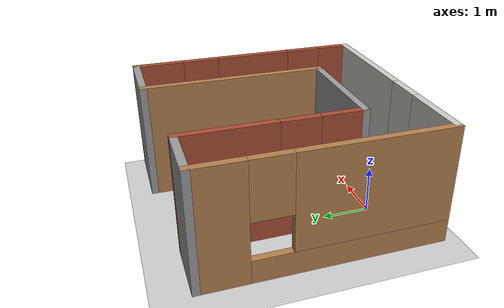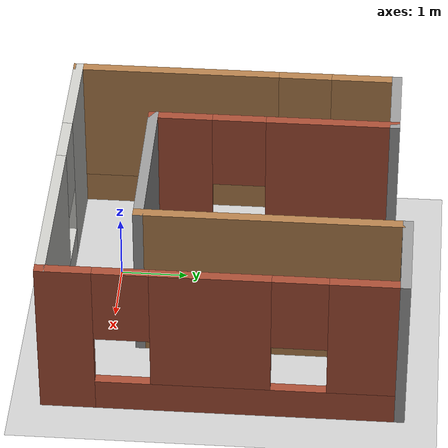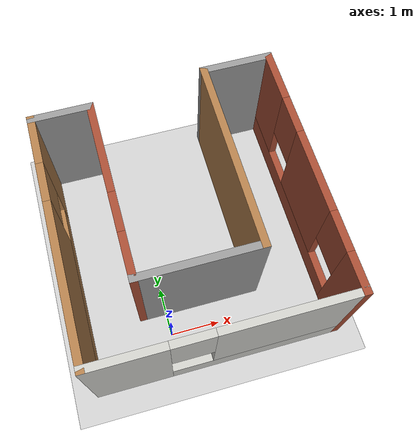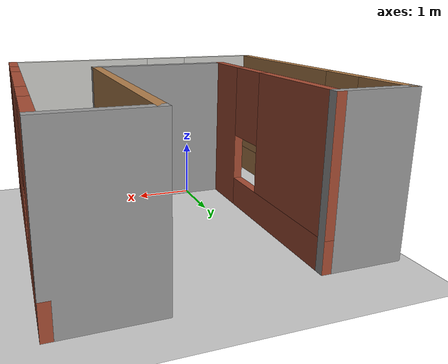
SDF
<sdf version="1.6">
 <world name="default">
  <light name="sun" type="directional">
   <pose>0 0 10 0 -0 0</pose>
   <diffuse>0.8 0.8 0.8 1</diffuse>
   <specular>0.2 0.2 0.2 1</specular>
   <attenuation>
    <range>1000</range>
    <constant>0.9</constant>
    <linear>0.01</linear>
    <quadratic>0.001</quadratic>
   </attenuation>
   <direction>-0.5 0.1 -0.9</direction>
  </light>
  <model name="ground_plane">
   <static>1</static>
   <link name="link">
    <collision name="collision">
     <geometry><plane><normal>0 0 1</normal><size>100 100</size></plane></geometry>
     <surface>
      <contact><collide_bitmask>65535</collide_bitmask></contact>
      <friction><ode><mu>100</mu><mu2>50</mu2></ode></friction>
     </surface>
    </collision>
    <visual name="visual">
     <cast_shadows>0</cast_shadows>
     <geometry><plane><normal>0 0 1</normal><size>100 100</size></plane></geometry>
     <material>
      <script><uri>file://media/materials/scripts/gazebo.material</uri><name>Gazebo/Grey</name></script>
     </material>
    </visual>
   </link>
  </model>
  <gravity>0 0 -9.8</gravity>
  <magnetic_field>6e-06 2.3e-05 -4.2e-05</magnetic_field>
  <atmosphere type="adiabatic"/>
  <physics name="default_physics" default="0" type="ode">
   <max_step_size>0.001</max_step_size>
   <real_time_factor>1</real_time_factor>
   <real_time_update_rate>1000</real_time_update_rate>
  </physics>
  <scene><ambient>0.4 0.4 0.4 1</ambient><background>0.7 0.7 0.7 1</background><shadows>1</shadows></scene>
  <spherical_coordinates>
   <surface_model>EARTH_WGS84</surface_model>
   <latitude_deg>0</latitude_deg>
   <longitude_deg>0</longitude_deg>
   <elevation>0</elevation>
   <heading_deg>0</heading_deg>
  </spherical_coordinates>
  <model name="Untitled">
   <pose>0.789446 1.77815 0.178821 0 -0 0</pose>
   <link name="Wall_14">
    <pose>-2.425 -0.125 0 0 0 -1.5708</pose>
    <visual name="Wall_14_Visual_0">
     <pose>-1.96858 0 1.25 0 -0 0</pose>
     <geometry><box><size>1.06284 0.15 2.5</size></box></geometry>
     <material>
      <script><uri>file://media/materials/scripts/gazebo.material</uri><name>Gazebo/Wood</name></script>
      <ambient>1 1 1 1</ambient>
     </material>
     <meta><layer>0</layer></meta>
    </visual>
    <collision name="Wall_14_Collision_0">
     <geometry><box><size>1.06284 0.15 2.5</size></box></geometry>
     <pose>-1.96858 0 1.25 0 -0 0</pose>
    </collision>
    <visual name="Wall_14_Visual_1">
     <pose>0.531418 0 0.25 0 -0 0</pose>
     <geometry><box><size>3.93716 0.15 0.5</size></box></geometry>
     <material>
      <script><uri>file://media/materials/scripts/gazebo.material</uri><name>Gazebo/Wood</name></script>
      <ambient>1 1 1 1</ambient>
     </material>
     <meta><layer>0</layer></meta>
    </visual>
    <collision name="Wall_14_Collision_1">
     <geometry><box><size>3.93716 0.15 0.5</size></box></geometry>
     <pose>0.531418 0 0.25 0 -0 0</pose>
    </collision>
    <visual name="Wall_14_Visual_2">
     <pose>0.931418 0 1.5 0 -0 0</pose>
     <geometry><box><size>3.13716 0.15 2</size></box></geometry>
     <material>
      <script><uri>file://media/materials/scripts/gazebo.material</uri><name>Gazebo/Wood</name></script>
      <ambient>1 1 1 1</ambient>
     </material>
     <meta><layer>0</layer></meta>
    </visual>
    <collision name="Wall_14_Collision_2">
     <geometry><box><size>3.13716 0.15 2</size></box></geometry>
     <pose>0.931418 0 1.5 0 -0 0</pose>
    </collision>
    <visual name="Wall_14_Visual_3">
     <pose>-1.03716 0 1.9 0 -0 0</pose>
     <geometry><box><size>0.8 0.15 1.2</size></box></geometry>
     <material>
      <script><uri>file://media/materials/scripts/gazebo.material</uri><name>Gazebo/Wood</name></script>
      <ambient>1 1 1 1</ambient>
     </material>
     <meta><layer>0</layer></meta>
    </visual>
    <collision name="Wall_14_Collision_3">
     <geometry><box><size>0.8 0.15 1.2</size></box></geometry>
     <pose>-1.03716 0 1.9 0 -0 0</pose>
    </collision>
   </link>
   <link name="Wall_15">
    <pose>0 -2.55 0 0 -0 0</pose>
    <visual name="Wall_15_Visual_0">
     <pose>-1.73728 0 1.25 0 -0 0</pose>
     <geometry><box><size>1.52545 0.15 2.5</size></box></geometry>
     <material>
      <script><uri>file://media/materials/scripts/gazebo.material</uri><name>Gazebo/CeilingTiled</name></script>
      <ambient>0.996078 0.47451 0.0196078 1</ambient>
     </material>
     <meta><layer>0</layer></meta>
    </visual>
    <collision name="Wall_15_Collision_0">
     <geometry><box><size>1.52545 0.15 2.5</size></box></geometry>
     <pose>-1.73728 0 1.25 0 -0 0</pose>
    </collision>
    <visual name="Wall_15_Visual_1">
     <pose>0.762724 0 0.25 0 -0 0</pose>
     <geometry><box><size>3.47455 0.15 0.5</size></box></geometry>
     <material>
      <script><uri>file://media/materials/scripts/gazebo.material</uri><name>Gazebo/CeilingTiled</name></script>
      <ambient>0.996078 0.47451 0.0196078 1</ambient>
     </material>
     <meta><layer>0</layer></meta>
    </visual>
    <collision name="Wall_15_Collision_1">
     <geometry><box><size>3.47455 0.15 0.5</size></box></geometry>
     <pose>0.762724 0 0.25 0 -0 0</pose>
    </collision>
    <visual name="Wall_15_Visual_2">
     <pose>1.16272 0 1.5 0 -0 0</pose>
     <geometry><box><size>2.67455 0.15 2</size></box></geometry>
     <material>
      <script><uri>file://media/materials/scripts/gazebo.material</uri><name>Gazebo/CeilingTiled</name></script>
      <ambient>0.996078 0.47451 0.0196078 1</ambient>
     </material>
     <meta><layer>0</layer></meta>
    </visual>
    <collision name="Wall_15_Collision_2">
     <geometry><box><size>2.67455 0.15 2</size></box></geometry>
     <pose>1.16272 0 1.5 0 -0 0</pose>
    </collision>
    <visual name="Wall_15_Visual_3">
     <pose>-0.574552 0 1.9 0 -0 0</pose>
     <geometry><box><size>0.8 0.15 1.2</size></box></geometry>
     <material>
      <script><uri>file://media/materials/scripts/gazebo.material</uri><name>Gazebo/CeilingTiled</name></script>
      <ambient>0.996078 0.47451 0.0196078 1</ambient>
     </material>
     <meta><layer>0</layer></meta>
    </visual>
    <collision name="Wall_15_Collision_3">
     <geometry><box><size>0.8 0.15 1.2</size></box></geometry>
     <pose>-0.574552 0 1.9 0 -0 0</pose>
    </collision>
   </link>
   <link name="Wall_16">
    <pose>2.425 0 0 0 -0 1.5708</pose>
    <visual name="Wall_16_Visual_0">
     <pose>-2.22301 0 1.25 0 -0 0</pose>
     <geometry><box><size>0.80399 0.15 2.5</size></box></geometry>
     <material>
      <script><uri>file://media/materials/scripts/gazebo.material</uri><name>Gazebo/Bricks</name></script>
      <ambient>1 1 1 1</ambient>
     </material>
     <meta><layer>0</layer></meta>
    </visual>
    <collision name="Wall_16_Collision_0">
     <geometry><box><size>0.80399 0.15 2.5</size></box></geometry>
     <pose>-2.22301 0 1.25 0 -0 0</pose>
    </collision>
    <visual name="Wall_16_Visual_1">
     <pose>0.401995 0 0.25 0 -0 0</pose>
     <geometry><box><size>4.44601 0.15 0.5</size></box></geometry>
     <material>
      <script><uri>file://media/materials/scripts/gazebo.material</uri><name>Gazebo/Bricks</name></script>
      <ambient>1 1 1 1</ambient>
     </material>
     <meta><layer>0</layer></meta>
    </visual>
    <collision name="Wall_16_Collision_1">
     <geometry><box><size>4.44601 0.15 0.5</size></box></geometry>
     <pose>0.401995 0 0.25 0 -0 0</pose>
    </collision>
    <visual name="Wall_16_Visual_2">
     <pose>-0.163912 0 1.5 0 -0 0</pose>
     <geometry><box><size>1.7142 0.15 2</size></box></geometry>
     <material>
      <script><uri>file://media/materials/scripts/gazebo.material</uri><name>Gazebo/Bricks</name></script>
      <ambient>1 1 1 1</ambient>
     </material>
     <meta><layer>0</layer></meta>
    </visual>
    <collision name="Wall_16_Collision_2">
     <geometry><box><size>1.7142 0.15 2</size></box></geometry>
     <pose>-0.163912 0 1.5 0 -0 0</pose>
    </collision>
    <visual name="Wall_16_Visual_3">
     <pose>2.05909 0 1.5 0 -0 0</pose>
     <geometry><box><size>1.13181 0.15 2</size></box></geometry>
     <material>
      <script><uri>file://media/materials/scripts/gazebo.material</uri><name>Gazebo/Bricks</name></script>
      <ambient>1 1 1 1</ambient>
     </material>
     <meta><layer>0</layer></meta>
    </visual>
    <collision name="Wall_16_Collision_3">
     <geometry><box><size>1.13181 0.15 2</size></box></geometry>
     <pose>2.05909 0 1.5 0 -0 0</pose>
    </collision>
    <visual name="Wall_16_Visual_4">
     <pose>-1.42101 0 1.9 0 -0 0</pose>
     <geometry><box><size>0.8 0.15 1.2</size></box></geometry>
     <material>
      <script><uri>file://media/materials/scripts/gazebo.material</uri><name>Gazebo/Bricks</name></script>
      <ambient>1 1 1 1</ambient>
     </material>
     <meta><layer>0</layer></meta>
    </visual>
    <collision name="Wall_16_Collision_4">
     <geometry><box><size>0.8 0.15 1.2</size></box></geometry>
     <pose>-1.42101 0 1.9 0 -0 0</pose>
    </collision>
    <visual name="Wall_16_Visual_5">
     <pose>1.09319 0 1.9 0 -0 0</pose>
     <geometry><box><size>0.8 0.15 1.2</size></box></geometry>
     <material>
      <script><uri>file://media/materials/scripts/gazebo.material</uri><name>Gazebo/Bricks</name></script>
      <ambient>1 1 1 1</ambient>
     </material>
     <meta><layer>0</layer></meta>
    </visual>
    <collision name="Wall_16_Collision_5">
     <geometry><box><size>0.8 0.15 1.2</size></box></geometry>
     <pose>1.09319 0 1.9 0 -0 0</pose>
    </collision>
   </link>
   <link name="Wall_17">
    <collision name="Wall_17_Collision">
     <geometry><box><size>1.5 0.15 2.5</size></box></geometry>
     <pose>0 0 1.25 0 -0 0</pose>
    </collision>
    <visual name="Wall_17_Visual">
     <pose>0 0 1.25 0 -0 0</pose>
     <geometry><box><size>1.5 0.15 2.5</size></box></geometry>
     <material>
      <script><uri>file://media/materials/scripts/gazebo.material</uri><name>Gazebo/Grey</name></script>
      <ambient>1 1 1 1</ambient>
     </material>
     <meta><layer>0</layer></meta>
    </visual>
    <pose>1.75 2.55 0 0 -0 3.14159</pose>
   </link>
   <link name="Wall_18">
    <collision name="Wall_18_Collision">
     <geometry><box><size>4 0.15 2.5</size></box></geometry>
     <pose>0 0 1.25 0 -0 0</pose>
    </collision>
    <visual name="Wall_18_Visual">
     <pose>0 0 1.25 0 -0 0</pose>
     <geometry><box><size>4 0.15 2.5</size></box></geometry>
     <material>
      <script><uri>file://media/materials/scripts/gazebo.material</uri><name>Gazebo/Wood</name></script>
      <ambient>1 1 1 1</ambient>
     </material>
     <meta><layer>0</layer></meta>
    </visual>
    <pose>1.075 0.625 0 0 0 -1.5708</pose>
   </link>
   <link name="Wall_19">
    <collision name="Wall_19_Collision">
     <geometry><box><size>2.5 0.15 2.5</size></box></geometry>
     <pose>0 0 1.25 0 -0 0</pose>
    </collision>
    <visual name="Wall_19_Visual">
     <pose>0 0 1.25 0 -0 0</pose>
     <geometry><box><size>2.5 0.15 2.5</size></box></geometry>
     <material>
      <script><uri>file://media/materials/scripts/gazebo.material</uri><name>Gazebo/Grey</name></script>
      <ambient>1 1 1 1</ambient>
     </material>
     <meta><layer>0</layer></meta>
    </visual>
    <pose>-0.1 -1.3 0 0 -0 3.14159</pose>
   </link>
   <link name="Wall_20">
    <pose>-1.275 0.5 0 0 -0 1.5708</pose>
    <visual name="Wall_20_Visual_0">
     <pose>-1.39403 0 1.25 0 -0 0</pose>
     <geometry><box><size>0.961939 0.15 2.5</size></box></geometry>
     <material>
      <script><uri>file://media/materials/scripts/gazebo.material</uri><name>Gazebo/Bricks</name></script>
      <ambient>1 1 1 1</ambient>
     </material>
     <meta><layer>0</layer></meta>
    </visual>
    <collision name="Wall_20_Collision_0">
     <geometry><box><size>0.961939 0.15 2.5</size></box></geometry>
     <pose>-1.39403 0 1.25 0 -0 0</pose>
    </collision>
    <visual name="Wall_20_Visual_1">
     <pose>0.48097 0 0.25 0 -0 0</pose>
     <geometry><box><size>2.78806 0.15 0.5</size></box></geometry>
     <material>
      <script><uri>file://media/materials/scripts/gazebo.material</uri><name>Gazebo/Bricks</name></script>
      <ambient>1 1 1 1</ambient>
     </material>
     <meta><layer>0</layer></meta>
    </visual>
    <collision name="Wall_20_Collision_1">
     <geometry><box><size>2.78806 0.15 0.5</size></box></geometry>
     <pose>0.48097 0 0.25 0 -0 0</pose>
    </collision>
    <visual name="Wall_20_Visual_2">
     <pose>0.88097 0 1.5 0 -0 0</pose>
     <geometry><box><size>1.98806 0.15 2</size></box></geometry>
     <material>
      <script><uri>file://media/materials/scripts/gazebo.material</uri><name>Gazebo/Bricks</name></script>
      <ambient>1 1 1 1</ambient>
     </material>
     <meta><layer>0</layer></meta>
    </visual>
    <collision name="Wall_20_Collision_2">
     <geometry><box><size>1.98806 0.15 2</size></box></geometry>
     <pose>0.88097 0 1.5 0 -0 0</pose>
    </collision>
    <visual name="Wall_20_Visual_3">
     <pose>-0.513061 0 1.9 0 -0 0</pose>
     <geometry><box><size>0.8 0.15 1.2</size></box></geometry>
     <material>
      <script><uri>file://media/materials/scripts/gazebo.material</uri><name>Gazebo/Bricks</name></script>
      <ambient>1 1 1 1</ambient>
     </material>
     <meta><layer>0</layer></meta>
    </visual>
    <collision name="Wall_20_Collision_3">
     <geometry><box><size>0.8 0.15 1.2</size></box></geometry>
     <pose>-0.513061 0 1.9 0 -0 0</pose>
    </collision>
   </link>
   <link name="Wall_21">
    <collision name="Wall_21_Collision">
     <geometry><box><size>1.3 0.15 2.5</size></box></geometry>
     <pose>0 0 1.25 0 -0 0</pose>
    </collision>
    <visual name="Wall_21_Visual">
     <pose>0 0 1.25 0 -0 0</pose>
     <geometry><box><size>1.3 0.15 2.5</size></box></geometry>
     <material>
      <script><uri>file://media/materials/scripts/gazebo.material</uri><name>Gazebo/Grey</name></script>
      <ambient>1 1 1 1</ambient>
     </material>
     <meta><layer>0</layer></meta>
    </visual>
    <pose>-1.85 2.3 0 0 -0 3.14159</pose>
   </link>
   <static>1</static>
  </model>
 </world>
</sdf>
